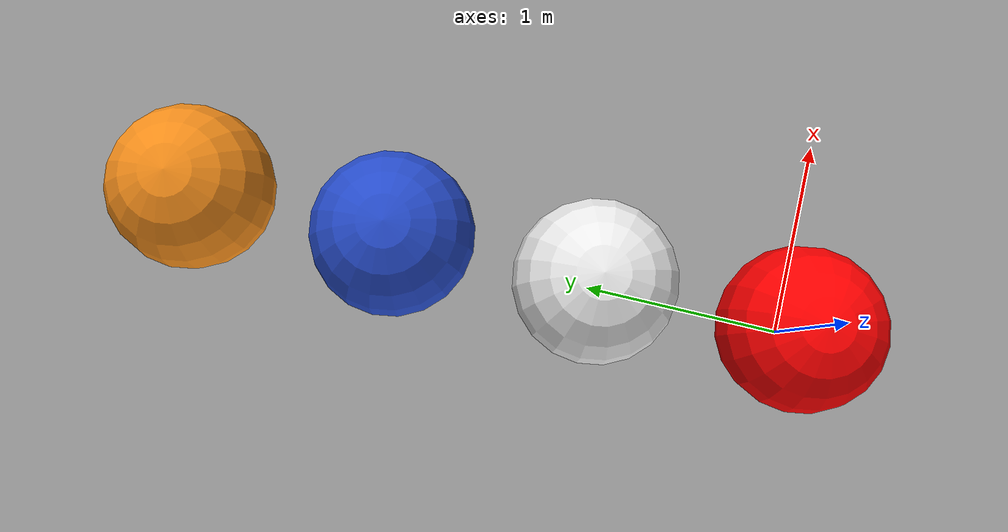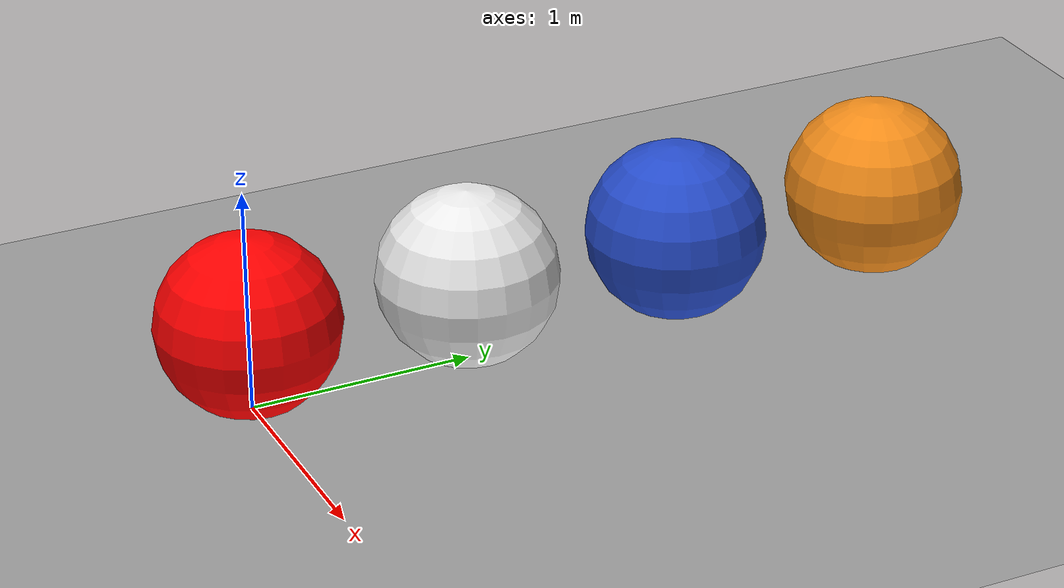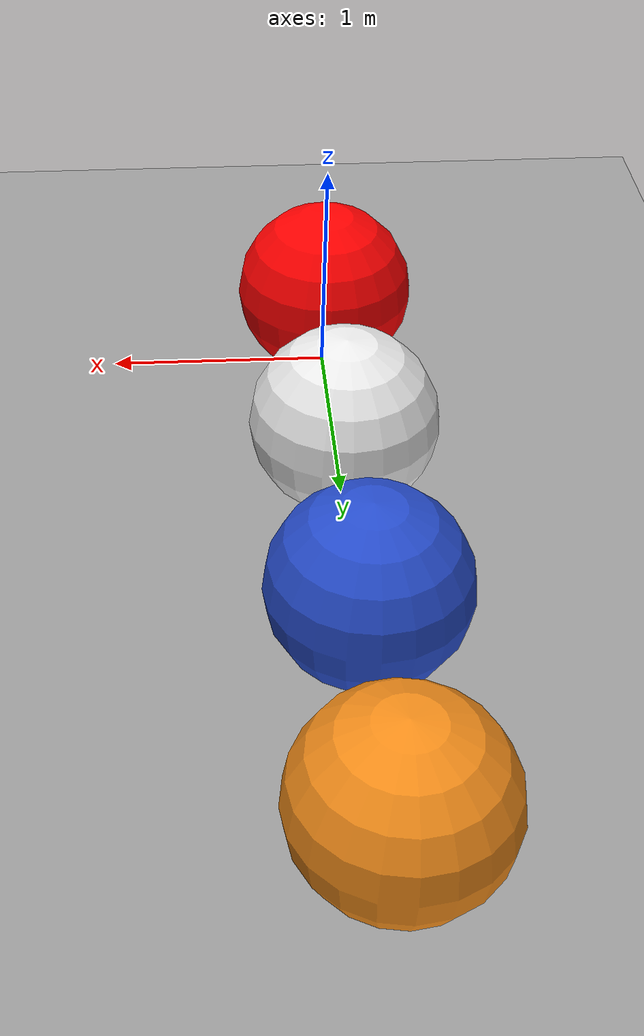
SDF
<?xml version="1.0" ?>
<sdf version="1.5">
  <world name="default">
    <!-- Gravity -->
    <gravity>1.5 0 -9.75</gravity>
    <!-- plowing effect ground plane -->
    <include>
      <uri>model://plowing_effect_ground_plane</uri>
    </include>
    <include>
      <uri>model://sun</uri>
    </include>

    <model name="sphere1">
      <pose>0 0 0.4 0 0 0</pose>
      <link name='base_link'>
        <inertial>
          <mass>5.0</mass>
          <inertia>
            <ixx>0.5333</ixx>
            <iyy>0.5333</iyy>
            <izz>0.5333</izz>
            <ixy>0</ixy>
            <ixz>0</ixz>
            <iyz>0</iyz>
          </inertia>
        </inertial>
        <collision name='collision'>
          <geometry>
            <sphere>
              <radius>0.4</radius>
            </sphere>
          </geometry>
        </collision>
        <visual name='visual'>
          <geometry>
            <sphere>
              <radius>0.4</radius>
            </sphere>
          </geometry>
          <material>
            <diffuse>1 0 0 1</diffuse>
            <ambient>1 0 0 1</ambient>
          </material>
        </visual>
      </link>
    </model>

    <model name= "sphere2" xmlns:gz="https://gazebosim.org/schema">
      <pose>0 1 0.4  0 0 0</pose>
      <link name="base_link">
        <inertial>
          <mass>5.0</mass>
          <inertia>
            <ixx>0.5333</ixx>
            <iyy>0.5333</iyy>
            <izz>0.5333</izz>
            <ixy>0</ixy>
            <ixz>0</ixz>
            <iyz>0</iyz>
          </inertia>
        </inertial>
        <collision name="collision">
          <gz:plowing_wheel>
            <max_degrees>3.0</max_degrees>
            <deadband_velocity>0.2</deadband_velocity>
            <saturation_velocity>0.6</saturation_velocity>
          </gz:plowing_wheel>
          <geometry>
            <sphere>
              <radius>0.4</radius>
            </sphere>
          </geometry>
          <surface>
            <contact>
              <ode>
                <kp>40000</kp>
                <kd>16</kd>
                <max_vel>10</max_vel>
                <min_depth>0.005</min_depth>
              </ode>
            </contact>
            <friction>
              <ode>
                <fdir1>0 1 0</fdir1>
              </ode>
            </friction>
          </surface>
        </collision>
        <visual name="visual">
          <geometry>
            <sphere>
              <radius>0.4</radius>
            </sphere>
          </geometry>
          <material>
            <script>
              <uri>file://media/materials/scripts/gazebo.material</uri>
              <name>Gazebo/White</name>
            </script>
          </material>
        </visual>
      </link>
    </model>

    <model name= "sphere3" xmlns:gz="https://gazebosim.org/schema">
      <pose>0 2 0.4  0 0 0</pose>
      <link name="base_link">
        <inertial>
          <mass>5.0</mass>
          <inertia>
            <ixx>0.5333</ixx>
            <iyy>0.5333</iyy>
            <izz>0.5333</izz>
            <ixy>0</ixy>
            <ixz>0</ixz>
            <iyz>0</iyz>
          </inertia>
        </inertial>
        <collision name="collision">
          <gz:plowing_wheel>
            <max_degrees>6.0</max_degrees>
            <deadband_velocity>0.2</deadband_velocity>
            <saturation_velocity>0.6</saturation_velocity>
          </gz:plowing_wheel>
          <geometry>
            <sphere>
              <radius>0.4</radius>
            </sphere>
          </geometry>
          <surface>
            <contact>
              <ode>
                <kp>40000</kp>
                <kd>16</kd>
                <max_vel>10</max_vel>
                <min_depth>0.005</min_depth>
              </ode>
            </contact>
            <friction>
              <ode>
                <fdir1>0 1 0</fdir1>
              </ode>
            </friction>
          </surface>
        </collision>
        <visual name="visual">
          <geometry>
            <sphere>
              <radius>0.4</radius>
            </sphere>
          </geometry>
          <material>
            <script>
              <uri>file://media/materials/scripts/gazebo.material</uri>
              <name>Gazebo/Blue</name>
            </script>
          </material>
        </visual>
      </link>
    </model>

    <model name= "sphere4" xmlns:gz="https://gazebosim.org/schema">
      <pose>0 3 0.4  0 0 0</pose>
      <link name="base_link">
        <inertial>
          <mass>5.0</mass>
          <inertia>
            <ixx>0.5333</ixx>
            <iyy>0.5333</iyy>
            <izz>0.5333</izz>
            <ixy>0</ixy>
            <ixz>0</ixz>
            <iyz>0</iyz>
          </inertia>
        </inertial>
        <collision name="collision">
          <gz:plowing_wheel>
            <max_degrees>8.0</max_degrees>
            <deadband_velocity>0.2</deadband_velocity>
            <saturation_velocity>0.6</saturation_velocity>
          </gz:plowing_wheel>
          <geometry>
            <sphere>
              <radius>0.4</radius>
            </sphere>
          </geometry>
          <surface>
            <contact>
              <ode>
                <kp>40000</kp>
                <kd>16</kd>
                <max_vel>10</max_vel>
                <min_depth>0.005</min_depth>
              </ode>
            </contact>
            <friction>
              <ode>
                <fdir1>0 1 0</fdir1>
              </ode>
            </friction>
          </surface>
        </collision>
        <visual name="visual">
          <geometry>
            <sphere>
              <radius>0.4</radius>
            </sphere>
          </geometry>
          <material>
            <script>
              <uri>file://media/materials/scripts/gazebo.material</uri>
              <name>Gazebo/Orange</name>
            </script>
          </material>
        </visual>
      </link>
    </model>
  </world>
</sdf>

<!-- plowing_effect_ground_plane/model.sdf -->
<sdf version="1.5">
  <model name="plowing_effect_ground_plane" xmlns:gz="https://gazebosim.org/schema">
    <static>true</static>
    <link name="link">
      <collision name="collision">
        <gz:plowing_terrain />
        <geometry>
          <plane>
            <normal>0 0 1</normal>
            <size>100 100</size>
          </plane>
        </geometry>
        <surface>
          <contact>
             <collide_bitmask>0xffff</collide_bitmask>
          </contact>
          <friction>
            <ode>
              <mu>100</mu>
              <mu2>50</mu2>
            </ode>
          </friction>
        </surface>
      </collision>
      <visual name="visual">
        <cast_shadows>false</cast_shadows>
        <geometry>
          <plane>
            <normal>0 0 1</normal>
            <size>100 100</size>
          </plane>
        </geometry>
        <material>
          <script>
            <uri>file://media/materials/scripts/gazebo.material</uri>
            <name>Gazebo/Grey</name>
          </script>
        </material>
      </visual>
    </link>
  </model>
</sdf>
